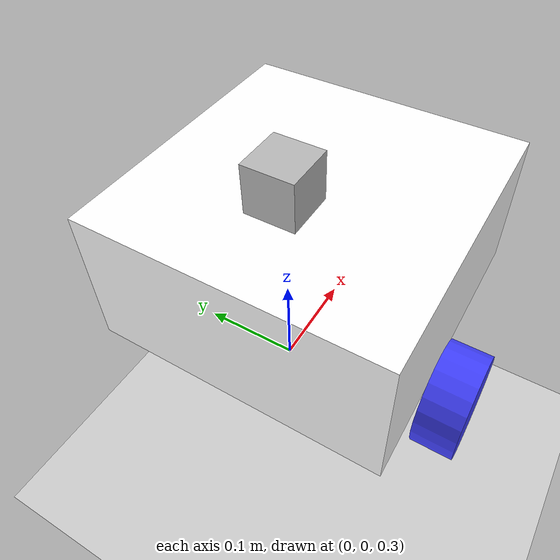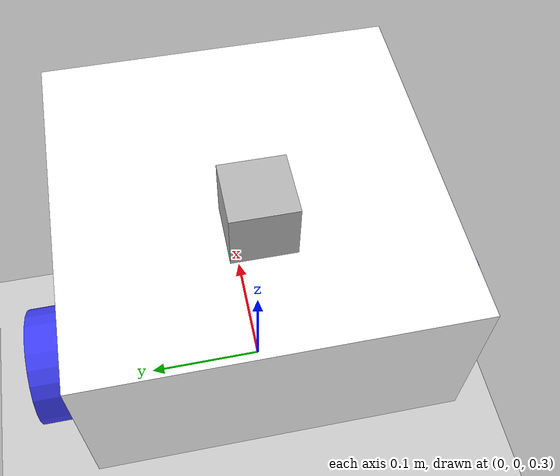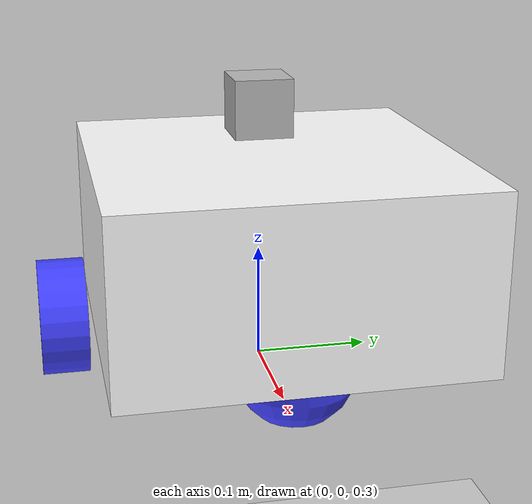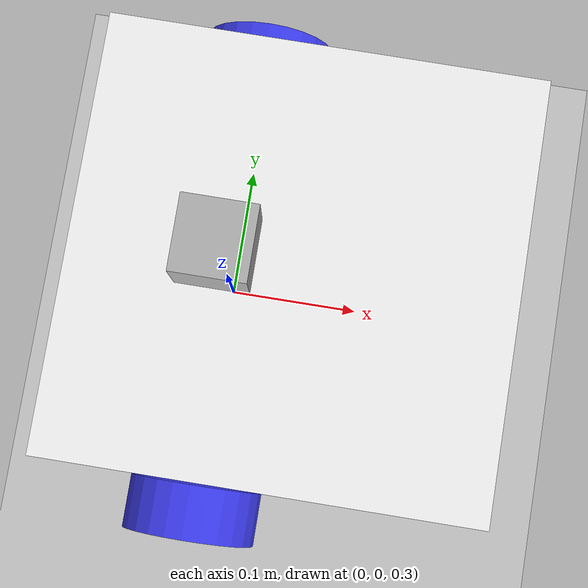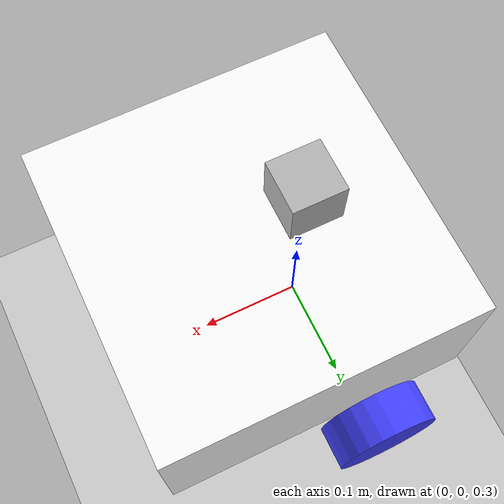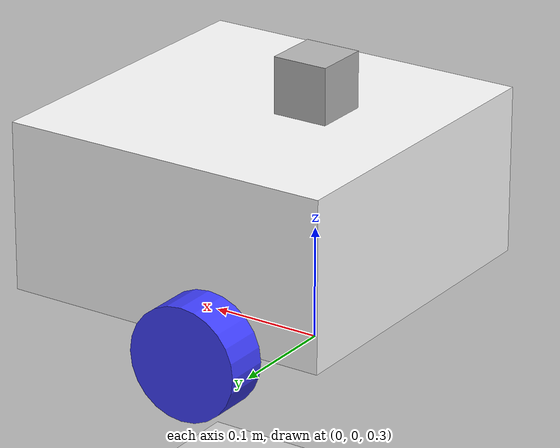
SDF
<?xml version="1.0" ?>
<sdf version="1.8">
  <world name="demo">
    <plugin
        filename="gz-sim-user-commands-system"
        name="gz::sim::systems::UserCommands">
    </plugin>
    <plugin
      filename="gz-sim-sensors-system"
      name="gz::sim::systems::Sensors">
      <render_engine>ogre2</render_engine>
    </plugin>
    <plugin
        filename="gz-sim-physics-system"
        name="gz::sim::systems::Physics">
    </plugin>
    <plugin
        filename="gz-sim-scene-broadcaster-system"
        name="gz::sim::systems::SceneBroadcaster">
    </plugin>

    <light name="sun" type="directional">
      <cast_shadows>true</cast_shadows>
      <pose>0 0 10 0 0 0</pose>
      <diffuse>0.8 0.8 0.8 1</diffuse>
      <specular>0.2 0.2 0.2 1</specular>
      <attenuation>
        <range>1000</range>
        <constant>0.9</constant>
        <linear>0.01</linear>
        <quadratic>0.001</quadratic>
      </attenuation>
      <direction>-0.5 0.1 -0.9</direction>
    </light>

    <model name="ground_plane">
      <static>true</static>
      <link name="link">
        <collision name="collision">
          <geometry>
            <plane>
              <normal>0 0 1</normal>
              <size>100 100</size>
            </plane>
          </geometry>
        </collision>
        <visual name="visual">
          <geometry>
            <plane>
              <normal>0 0 1</normal>
              <size>100 100</size>
            </plane>
          </geometry>
          <material>
            <ambient>0.8 0.8 0.8 1</ambient>
            <diffuse>0.8 0.8 0.8 1</diffuse>
            <specular>0.8 0.8 0.8 1</specular>
          </material>
        </visual>
      </link>
    </model>

    <model name="roboto">
      <self_collide>true</self_collide>
      <pose>0 0 0.35 0 0 0</pose>
      <include merge="true">
        <uri>model://roboto</uri>
      </include>

      <plugin
        filename="gz-sim-joint-state-publisher-system"
        name="gz::sim::systems::JointStatePublisher">
      </plugin>

      <plugin
        filename="gz-sim-pose-publisher-system"
        name="gz::sim::systems::PosePublisher">
        <publish_link_pose>true</publish_link_pose>
        <use_pose_vector_msg>true</use_pose_vector_msg>
        <static_publisher>true</static_publisher>
        <static_update_frequency>1</static_update_frequency>
      </plugin>

      <plugin
        filename="gz-sim-odometry-publisher-system"
        name="gz::sim::systems::OdometryPublisher">
        <odom_frame>roboto/odom</odom_frame>
        <robot_base_frame>roboto</robot_base_frame>
      </plugin>
    </model>

  </world>
</sdf>

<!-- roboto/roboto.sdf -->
<sdf version="1.6">
  <model name="differential_drive_robot">
    <static>false</static>

    <!-- Base Link -->
    <link name="base_link">

    </link>

    <!-- Chassis Link -->
    <link name="chassis">
      <pose>-0.1 0 0 0 0 0</pose>
      <inertial>
        <pose>0.15 0 0.075 0 0 0</pose>
        <mass>0.59999999999999998</mass>
        <inertia>
          <ixx>0.0052562499999999988</ixx>
          <ixy>0</ixy>
          <ixz>0.00056250000000000007</ixz>
          <iyy>0.0059312499999999964</iyy>
          <iyz>0</iyz>
          <izz>0.0082749999999999976</izz>
        </inertia>
      </inertial>
      <collision name="collision">
        <pose>0.15 0 0.075 0 0 0</pose>
        <geometry>
          <box>
            <size>0.3 0.3 0.15</size>
          </box>
        </geometry>
      </collision>
      <visual name="visual">
        <pose>0.15 0 0.075 0 0 0</pose>
        <geometry>
          <box>
            <size>0.3 0.3 0.15</size>
          </box>
        </geometry>
        <material>
          <diffuse>1 1 1 1</diffuse>
          <ambient>1 1 1 1</ambient>
        </material>
      </visual>
    </link>
    <joint name="chassis_joint" type="fixed">
      <parent>base_link</parent>
      <child>chassis</child>
    </joint>

    <!-- Left Wheel -->
    <link name="left_wheel">
      <pose>0 0.175 0 -1.5708 0 0</pose>
      <inertial>
        <mass>1.0</mass>
        <inertia>
          <ixx>0.01</ixx>
          <iyy>0.01</iyy>
          <izz>0.01</izz>
        </inertia>
      </inertial>
      <collision name="collision">
        <geometry>
          <cylinder>
            <radius>0.05</radius>
            <length>0.04</length>
          </cylinder>
        </geometry>
      </collision>
      <visual name="visual">
        <geometry>
          <cylinder>
            <radius>0.05</radius>
            <length>0.04</length>
          </cylinder>
        </geometry>
        <material>
          <diffuse>0.25 0.25 1 1</diffuse>
          <ambient>0.25 0.25 1 1</ambient>
        </material>
      </visual>
    </link>
    <joint name="left_wheel_joint" type="revolute">
      <parent>base_link</parent>
      <child>left_wheel</child>
      <axis>
        <xyz>0 0 1</xyz>
        <limit>
          <lower>-10000000000000000</lower>
          <upper>10000000000000000</upper>
        </limit>
      </axis>
    </joint>

    <!-- Right Wheel -->
    <link name="right_wheel">
      <pose>0 -0.175 0 1.5708 0 0</pose>
      <inertial>
        <pose>0 0 0 0 0 0</pose>
        <mass>0.10000000000000001</mass>
        <inertia>
          <ixx>7.5833333333333352e-05</ixx>
          <ixy>0</ixy>
          <ixz>0</ixz>
          <iyy>7.5833333333333352e-05</iyy>
          <iyz>0</iyz>
          <izz>0.000125</izz>
        </inertia>
      </inertial>
      <collision name="collision">
        <geometry>
          <cylinder>
            <radius>0.05</radius>
            <length>0.04</length>
          </cylinder>
        </geometry>
      </collision>
      <visual name="visual">
        <geometry>
          <cylinder>
            <radius>0.05</radius>
            <length>0.04</length>
          </cylinder>
        </geometry>
        <material>
          <diffuse>0.25 0.25 1 1</diffuse>
          <ambient>0.25 0.25 1 1</ambient>
        </material>
      </visual>
    </link>
    <joint name="right_wheel_joint" type="revolute">
      <parent>base_link</parent>
      <child>right_wheel</child>
      <axis>
        <xyz>0 0 -1</xyz>
        <limit>
          <lower>-10000000000000000</lower>
          <upper>10000000000000000</upper>
        </limit>
      </axis>
    </joint>

    <!-- Caster Wheel -->
    <link name="caster_wheel">
      <pose>0.14 0 0 0 0 0</pose>
      <inertial>
        <mass>0.5</mass>
        <inertia>
          <ixx>0.005</ixx>
          <iyy>0.005</iyy>
          <izz>0.005</izz>
        </inertia>
      </inertial>
      <collision name="collision">
        <geometry>
          <sphere>
            <radius>0.05</radius>
          </sphere>
        </geometry>
      </collision>
      <surface>
        <friction>
          <ode>
            <mu>0.005</mu>
            <mu2>0.005</mu2>
          </ode>
        </friction>
      </surface>
      <visual name="visual">
        <geometry>
          <sphere>
            <radius>0.05</radius>
          </sphere>
        </geometry>
        <material>
          <diffuse>0.25 0.25 1 1</diffuse>
          <ambient>0.25 0.25 1 1</ambient>
        </material>
      </visual>
    </link>
    <joint name="caster_wheel_joint" type="fixed">
      <parent>chassis</parent>
      <child>caster_wheel</child>
    </joint>

    <link name="lidar_link">
      <pose>0 0 0.18 0 0 0</pose>
      <inertial>
        <mass>0.1</mass>
        <inertia>
          <ixx>0.000166667</ixx>
          <iyy>0.000166667</iyy>
          <izz>0.000166667</izz>
        </inertia>
      </inertial>
      <collision name="collision">
        <geometry>
          <box>
            <size>0.05 0.05 0.05</size>
          </box>
        </geometry>
      </collision>
      <visual name="visual">
        <geometry>
          <box>
            <size>0.05 0.05 0.05</size>
          </box>
        </geometry>
      </visual>
<sensor name='gpu_lidar' type='gpu_lidar'>"
    <pose relative_to='lidar_link'>0 0 0 0 0 0</pose>
    <topic>scan</topic>
    <gz_frame_id>roboto/lidar_link</gz_frame_id>
    <update_rate>5</update_rate>
    <ray>
        <scan>
            <horizontal>
                <samples>500</samples>
                <resolution>1</resolution>
                <min_angle>-3.14</min_angle>
                <max_angle>3.14</max_angle>
            </horizontal>
            <vertical>
                <samples>1</samples>
                <resolution>0.01</resolution>
                <min_angle>0</min_angle>
                <max_angle>0</max_angle>
            </vertical>
        </scan>
        <range>
            <min>0.08</min>
            <max>10.0</max>
            <resolution>0.01</resolution>
        </range>
    </ray>
    <always_on>1</always_on>
    <visualize>true</visualize>
</sensor>
    </link>

    <joint name='lidar_joint' type='fixed'>
      <parent>base_link</parent>
      <child>lidar_link</child>
    </joint>

    <!-- Differential Drive Plugin -->
  <plugin filename="gz-sim-diff-drive-system" name="gz::sim::systems::DiffDrive">
    <left_joint>left_wheel_joint</left_joint>
    <right_joint>right_wheel_joint</right_joint>
    <wheel_separation>0.35</wheel_separation>
    <wheel_radius>0.05</wheel_radius>
    <max_acceleration>0.3</max_acceleration>
    <min_acceleration>-0.3</min_acceleration>
  </plugin>

  </model>
</sdf>
